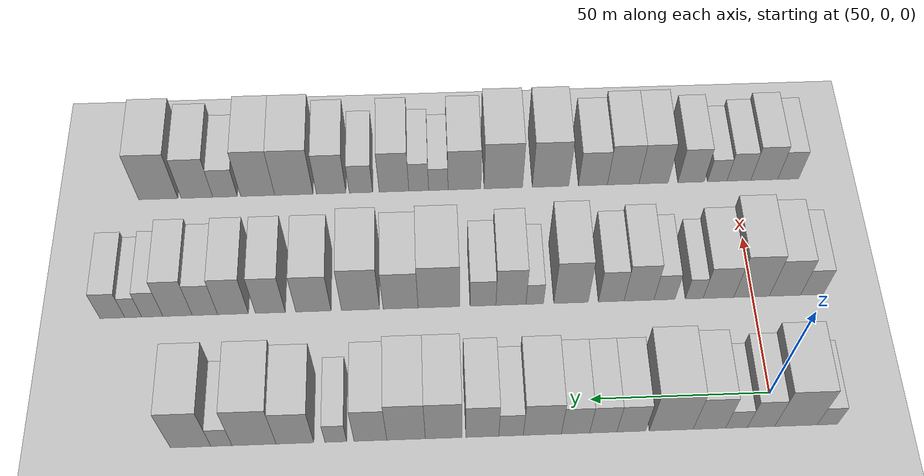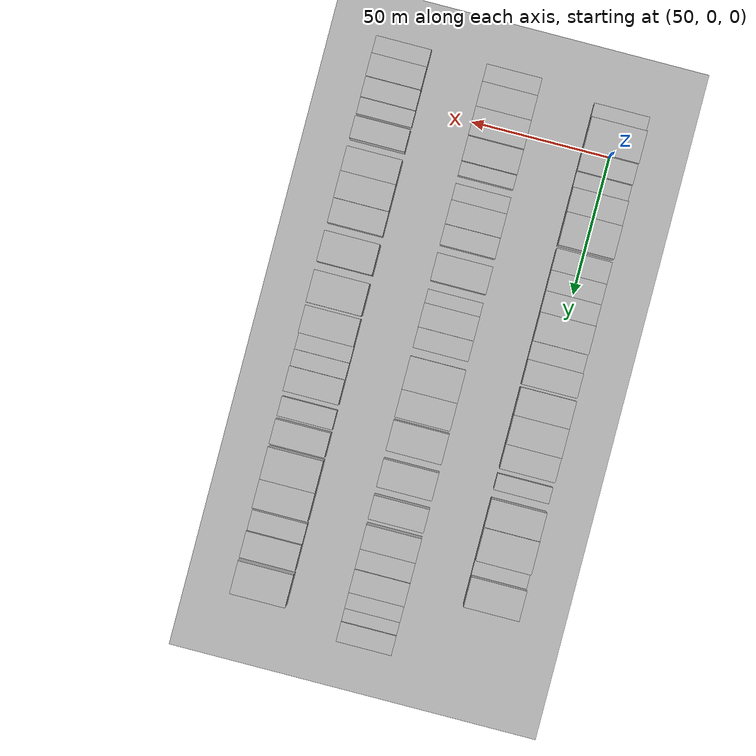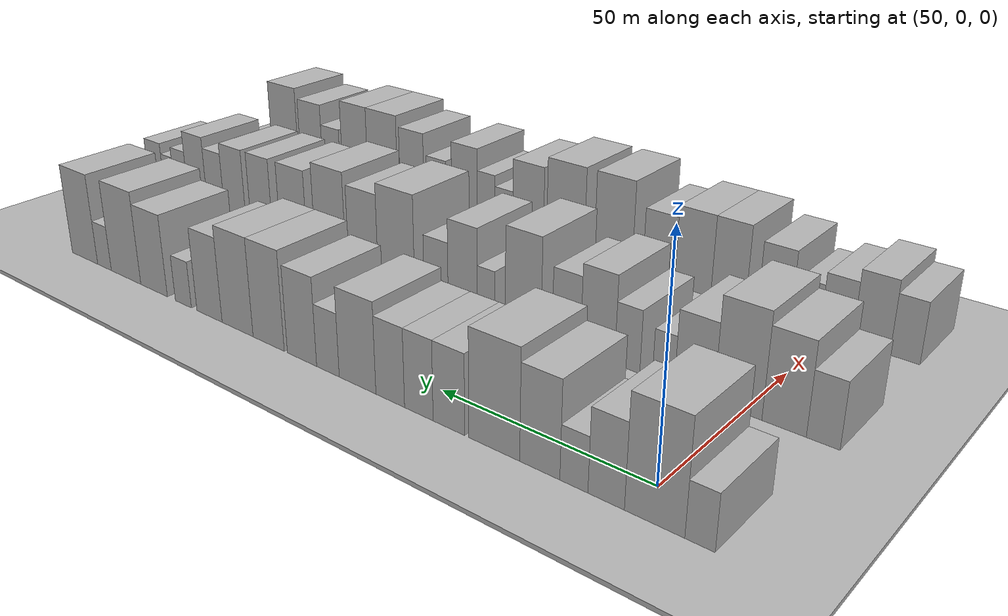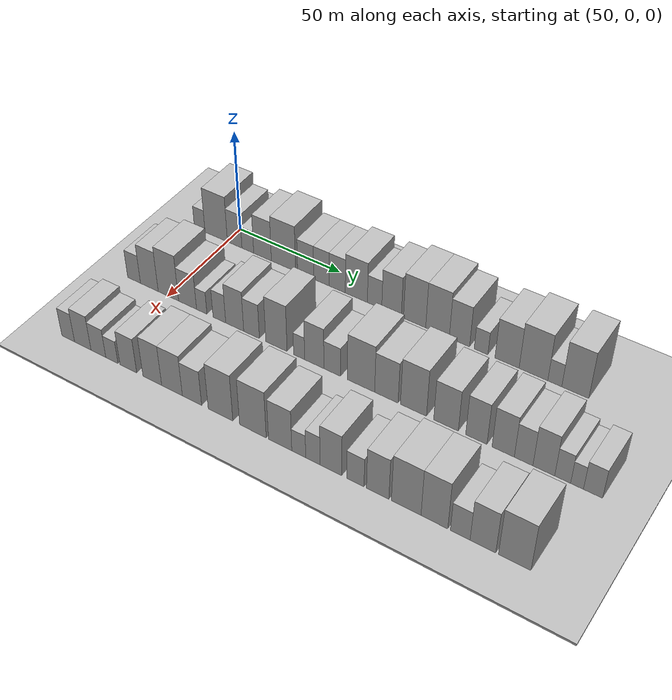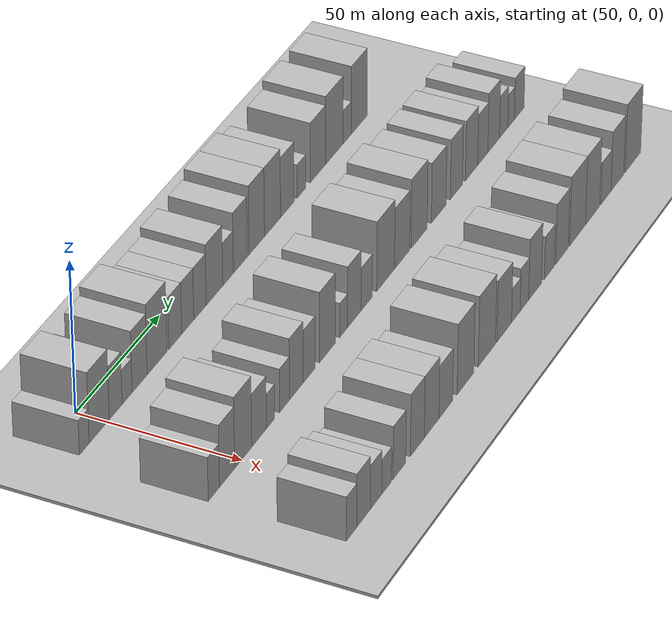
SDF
<sdf version="1.6">
 <world name="default">
  <include><name>ground_plane_1</name><uri>model://HANNAS_ground_plane</uri></include>
  <include>
   <name>ground_plane_2</name>
   <uri>model://HANNAS_ground_plane</uri>
   <pose>100 0 0  0 0 0</pose>
  </include>
  <model name="building_43">
   <static>1</static>
   <pose>50.0000 -14.0464 0 0.000000 0.000000 0.000000</pose>
   <link name="link">
    <pose>0 0 6.00 0 0 0</pose>
    <collision name="collision"><geometry><box><size>20.0000 5.6122 12.0000</size></box></geometry></collision>
    <visual name="visual">
     <cast_shadows>0</cast_shadows>
     <geometry><box><size>20.0000 5.6122 12.0000</size></box></geometry>
     <material>
      <script>
       <uri>model://HANNAS_wall/materials/scripts</uri>
       <uri>model://HANNAS_wall/materials/textures</uri>
       <name>vrc/HANNAS_wall</name>
      </script>
     </material>
    </visual>
   </link>
  </model>
  <model name="building_44">
   <static>1</static>
   <pose>50.0000 -5.3865 0 0.000000 0.000000 0.000000</pose>
   <link name="link">
    <pose>0 0 12.00 0 0 0</pose>
    <collision name="collision"><geometry><box><size>20.0000 11.7078 24.0000</size></box></geometry></collision>
    <visual name="visual">
     <cast_shadows>0</cast_shadows>
     <geometry><box><size>20.0000 11.7078 24.0000</size></box></geometry>
     <material>
      <script>
       <uri>model://HANNAS_wall/materials/scripts</uri>
       <uri>model://HANNAS_wall/materials/textures</uri>
       <name>vrc/HANNAS_wall</name>
      </script>
     </material>
    </visual>
   </link>
  </model>
  <model name="building_45">
   <static>1</static>
   <pose>50.0000 4.2146 0 0.000000 0.000000 0.000000</pose>
   <link name="link">
    <pose>0 0 9.00 0 0 0</pose>
    <collision name="collision"><geometry><box><size>20.0000 7.4943 18.0000</size></box></geometry></collision>
    <visual name="visual">
     <cast_shadows>0</cast_shadows>
     <geometry><box><size>20.0000 7.4943 18.0000</size></box></geometry>
     <material>
      <script>
       <uri>model://HANNAS_wall/materials/scripts</uri>
       <uri>model://HANNAS_wall/materials/textures</uri>
       <name>vrc/HANNAS_wall</name>
      </script>
     </material>
    </visual>
   </link>
  </model>
  <model name="building_46">
   <static>1</static>
   <pose>50.0000 10.9551 0 0.000000 0.000000 0.000000</pose>
   <link name="link">
    <pose>0 0 6.00 0 0 0</pose>
    <collision name="collision"><geometry><box><size>20.0000 5.9868 12.0000</size></box></geometry></collision>
    <visual name="visual">
     <cast_shadows>0</cast_shadows>
     <geometry><box><size>20.0000 5.9868 12.0000</size></box></geometry>
     <material>
      <script>
       <uri>model://HANNAS_wall/materials/scripts</uri>
       <uri>model://HANNAS_wall/materials/textures</uri>
       <name>vrc/HANNAS_wall</name>
      </script>
     </material>
    </visual>
   </link>
  </model>
  <model name="building_47">
   <static>1</static>
   <pose>50.0000 18.4192 0 0.000000 0.000000 0.000000</pose>
   <link name="link">
    <pose>0 0 10.50 0 0 0</pose>
    <collision name="collision"><geometry><box><size>20.0000 8.9415 21.0000</size></box></geometry></collision>
    <visual name="visual">
     <cast_shadows>0</cast_shadows>
     <geometry><box><size>20.0000 8.9415 21.0000</size></box></geometry>
     <material>
      <script>
       <uri>model://HANNAS_wall/materials/scripts</uri>
       <uri>model://HANNAS_wall/materials/textures</uri>
       <name>vrc/HANNAS_wall</name>
      </script>
     </material>
    </visual>
   </link>
  </model>
  <model name="building_48">
   <static>1</static>
   <pose>50.0000 28.8861 0 0.000000 0.000000 0.000000</pose>
   <link name="link">
    <pose>0 0 12.00 0 0 0</pose>
    <collision name="collision"><geometry><box><size>20.0000 11.9924 24.0000</size></box></geometry></collision>
    <visual name="visual">
     <cast_shadows>0</cast_shadows>
     <geometry><box><size>20.0000 11.9924 24.0000</size></box></geometry>
     <material>
      <script>
       <uri>model://HANNAS_wall/materials/scripts</uri>
       <uri>model://HANNAS_wall/materials/textures</uri>
       <name>vrc/HANNAS_wall</name>
      </script>
     </material>
    </visual>
   </link>
  </model>
  <model name="building_49">
   <static>1</static>
   <pose>50.0000 39.8262 0 0.000000 0.000000 0.000000</pose>
   <link name="link">
    <pose>0 0 9.00 0 0 0</pose>
    <collision name="collision"><geometry><box><size>20.0000 7.8877 18.0000</size></box></geometry></collision>
    <visual name="visual">
     <cast_shadows>0</cast_shadows>
     <geometry><box><size>20.0000 7.8877 18.0000</size></box></geometry>
     <material>
      <script>
       <uri>model://HANNAS_wall/materials/scripts</uri>
       <uri>model://HANNAS_wall/materials/textures</uri>
       <name>vrc/HANNAS_wall</name>
      </script>
     </material>
    </visual>
   </link>
  </model>
  <model name="building_50">
   <static>1</static>
   <pose>50.0000 47.4866 0 0.000000 0.000000 0.000000</pose>
   <link name="link">
    <pose>0 0 9.00 0 0 0</pose>
    <collision name="collision"><geometry><box><size>20.0000 7.4331 18.0000</size></box></geometry></collision>
    <visual name="visual">
     <cast_shadows>0</cast_shadows>
     <geometry><box><size>20.0000 7.4331 18.0000</size></box></geometry>
     <material>
      <script>
       <uri>model://HANNAS_wall/materials/scripts</uri>
       <uri>model://HANNAS_wall/materials/textures</uri>
       <name>vrc/HANNAS_wall</name>
      </script>
     </material>
    </visual>
   </link>
  </model>
  <model name="building_51">
   <static>1</static>
   <pose>50.0000 55.0827 0 0.000000 0.000000 0.000000</pose>
   <link name="link">
    <pose>0 0 9.00 0 0 0</pose>
    <collision name="collision"><geometry><box><size>20.0000 7.7591 18.0000</size></box></geometry></collision>
    <visual name="visual">
     <cast_shadows>0</cast_shadows>
     <geometry><box><size>20.0000 7.7591 18.0000</size></box></geometry>
     <material>
      <script>
       <uri>model://HANNAS_wall/materials/scripts</uri>
       <uri>model://HANNAS_wall/materials/textures</uri>
       <name>vrc/HANNAS_wall</name>
      </script>
     </material>
    </visual>
   </link>
  </model>
  <model name="building_52">
   <static>1</static>
   <pose>50.0000 64.1547 0 0.000000 0.000000 0.000000</pose>
   <link name="link">
    <pose>0 0 10.50 0 0 0</pose>
    <collision name="collision"><geometry><box><size>20.0000 10.3849 21.0000</size></box></geometry></collision>
    <visual name="visual">
     <cast_shadows>0</cast_shadows>
     <geometry><box><size>20.0000 10.3849 21.0000</size></box></geometry>
     <material>
      <script>
       <uri>model://HANNAS_wall/materials/scripts</uri>
       <uri>model://HANNAS_wall/materials/textures</uri>
       <name>vrc/HANNAS_wall</name>
      </script>
     </material>
    </visual>
   </link>
  </model>
  <model name="building_53">
   <static>1</static>
   <pose>50.0000 72.6864 0 0.000000 0.000000 0.000000</pose>
   <link name="link">
    <pose>0 0 7.50 0 0 0</pose>
    <collision name="collision"><geometry><box><size>20.0000 6.6784 15.0000</size></box></geometry></collision>
    <visual name="visual">
     <cast_shadows>0</cast_shadows>
     <geometry><box><size>20.0000 6.6784 15.0000</size></box></geometry>
     <material>
      <script>
       <uri>model://HANNAS_wall/materials/scripts</uri>
       <uri>model://HANNAS_wall/materials/textures</uri>
       <name>vrc/HANNAS_wall</name>
      </script>
     </material>
    </visual>
   </link>
  </model>
  <model name="building_54">
   <static>1</static>
   <pose>50.0000 80.5104 0 0.000000 0.000000 0.000000</pose>
   <link name="link">
    <pose>0 0 10.50 0 0 0</pose>
    <collision name="collision"><geometry><box><size>20.0000 8.9695 21.0000</size></box></geometry></collision>
    <visual name="visual">
     <cast_shadows>0</cast_shadows>
     <geometry><box><size>20.0000 8.9695 21.0000</size></box></geometry>
     <material>
      <script>
       <uri>model://HANNAS_wall/materials/scripts</uri>
       <uri>model://HANNAS_wall/materials/textures</uri>
       <name>vrc/HANNAS_wall</name>
      </script>
     </material>
    </visual>
   </link>
  </model>
  <model name="building_55">
   <static>1</static>
   <pose>50.0000 91.0165 0 0.000000 0.000000 0.000000</pose>
   <link name="link">
    <pose>0 0 12.00 0 0 0</pose>
    <collision name="collision"><geometry><box><size>20.0000 10.0427 24.0000</size></box></geometry></collision>
    <visual name="visual">
     <cast_shadows>0</cast_shadows>
     <geometry><box><size>20.0000 10.0427 24.0000</size></box></geometry>
     <material>
      <script>
       <uri>model://HANNAS_wall/materials/scripts</uri>
       <uri>model://HANNAS_wall/materials/textures</uri>
       <name>vrc/HANNAS_wall</name>
      </script>
     </material>
    </visual>
   </link>
  </model>
  <model name="building_56">
   <static>1</static>
   <pose>50.0000 101.2746 0 0.000000 0.000000 0.000000</pose>
   <link name="link">
    <pose>0 0 12.00 0 0 0</pose>
    <collision name="collision"><geometry><box><size>20.0000 10.4735 24.0000</size></box></geometry></collision>
    <visual name="visual">
     <cast_shadows>0</cast_shadows>
     <geometry><box><size>20.0000 10.4735 24.0000</size></box></geometry>
     <material>
      <script>
       <uri>model://HANNAS_wall/materials/scripts</uri>
       <uri>model://HANNAS_wall/materials/textures</uri>
       <name>vrc/HANNAS_wall</name>
      </script>
     </material>
    </visual>
   </link>
  </model>
  <model name="building_57">
   <static>1</static>
   <pose>50.0000 110.9593 0 0.000000 0.000000 0.000000</pose>
   <link name="link">
    <pose>0 0 10.50 0 0 0</pose>
    <collision name="collision"><geometry><box><size>20.0000 8.8959 21.0000</size></box></geometry></collision>
    <visual name="visual">
     <cast_shadows>0</cast_shadows>
     <geometry><box><size>20.0000 8.8959 21.0000</size></box></geometry>
     <material>
      <script>
       <uri>model://HANNAS_wall/materials/scripts</uri>
       <uri>model://HANNAS_wall/materials/textures</uri>
       <name>vrc/HANNAS_wall</name>
      </script>
     </material>
    </visual>
   </link>
  </model>
  <model name="building_58">
   <static>1</static>
   <pose>50.0000 120.3585 0 0.000000 0.000000 0.000000</pose>
   <link name="link">
    <pose>0 0 6.00 0 0 0</pose>
    <collision name="collision"><geometry><box><size>20.0000 5.9026 12.0000</size></box></geometry></collision>
    <visual name="visual">
     <cast_shadows>0</cast_shadows>
     <geometry><box><size>20.0000 5.9026 12.0000</size></box></geometry>
     <material>
      <script>
       <uri>model://HANNAS_wall/materials/scripts</uri>
       <uri>model://HANNAS_wall/materials/textures</uri>
       <name>vrc/HANNAS_wall</name>
      </script>
     </material>
    </visual>
   </link>
  </model>
  <model name="building_59">
   <static>1</static>
   <pose>50.0000 131.4336 0 0.000000 0.000000 0.000000</pose>
   <link name="link">
    <pose>0 0 10.50 0 0 0</pose>
    <collision name="collision"><geometry><box><size>20.0000 10.2477 21.0000</size></box></geometry></collision>
    <visual name="visual">
     <cast_shadows>0</cast_shadows>
     <geometry><box><size>20.0000 10.2477 21.0000</size></box></geometry>
     <material>
      <script>
       <uri>model://HANNAS_wall/materials/scripts</uri>
       <uri>model://HANNAS_wall/materials/textures</uri>
       <name>vrc/HANNAS_wall</name>
      </script>
     </material>
    </visual>
   </link>
  </model>
  <model name="building_60">
   <static>1</static>
   <pose>50.0000 142.5209 0 0.000000 0.000000 0.000000</pose>
   <link name="link">
    <pose>0 0 12.00 0 0 0</pose>
    <collision name="collision"><geometry><box><size>20.0000 11.9268 24.0000</size></box></geometry></collision>
    <visual name="visual">
     <cast_shadows>0</cast_shadows>
     <geometry><box><size>20.0000 11.9268 24.0000</size></box></geometry>
     <material>
      <script>
       <uri>model://HANNAS_wall/materials/scripts</uri>
       <uri>model://HANNAS_wall/materials/textures</uri>
       <name>vrc/HANNAS_wall</name>
      </script>
     </material>
    </visual>
   </link>
  </model>
  <model name="building_61">
   <static>1</static>
   <pose>50.0000 151.3487 0 0.000000 0.000000 0.000000</pose>
   <link name="link">
    <pose>0 0 6.00 0 0 0</pose>
    <collision name="collision"><geometry><box><size>20.0000 5.7289 12.0000</size></box></geometry></collision>
    <visual name="visual">
     <cast_shadows>0</cast_shadows>
     <geometry><box><size>20.0000 5.7289 12.0000</size></box></geometry>
     <material>
      <script>
       <uri>model://HANNAS_wall/materials/scripts</uri>
       <uri>model://HANNAS_wall/materials/textures</uri>
       <name>vrc/HANNAS_wall</name>
      </script>
     </material>
    </visual>
   </link>
  </model>
  <model name="building_62">
   <static>1</static>
   <pose>50.0000 159.6799 0 0.000000 0.000000 0.000000</pose>
   <link name="link">
    <pose>0 0 12.00 0 0 0</pose>
    <collision name="collision"><geometry><box><size>20.0000 10.9334 24.0000</size></box></geometry></collision>
    <visual name="visual">
     <cast_shadows>0</cast_shadows>
     <geometry><box><size>20.0000 10.9334 24.0000</size></box></geometry>
     <material>
      <script>
       <uri>model://HANNAS_wall/materials/scripts</uri>
       <uri>model://HANNAS_wall/materials/textures</uri>
       <name>vrc/HANNAS_wall</name>
      </script>
     </material>
    </visual>
   </link>
  </model>
  <model name="building_121">
   <static>1</static>
   <pose>90.0000 -17.0035 0 0.000000 0.000000 0.000000</pose>
   <link name="link">
    <pose>0 0 7.50 0 0 0</pose>
    <collision name="collision"><geometry><box><size>20.0000 6.6418 15.0000</size></box></geometry></collision>
    <visual name="visual">
     <cast_shadows>0</cast_shadows>
     <geometry><box><size>20.0000 6.6418 15.0000</size></box></geometry>
     <material>
      <script>
       <uri>model://HANNAS_wall/materials/scripts</uri>
       <uri>model://HANNAS_wall/materials/textures</uri>
       <name>vrc/HANNAS_wall</name>
      </script>
     </material>
    </visual>
   </link>
  </model>
  <model name="building_122">
   <static>1</static>
   <pose>90.0000 -9.1306 0 0.000000 0.000000 0.000000</pose>
   <link name="link">
    <pose>0 0 10.50 0 0 0</pose>
    <collision name="collision"><geometry><box><size>20.0000 9.1041 21.0000</size></box></geometry></collision>
    <visual name="visual">
     <cast_shadows>0</cast_shadows>
     <geometry><box><size>20.0000 9.1041 21.0000</size></box></geometry>
     <material>
      <script>
       <uri>model://HANNAS_wall/materials/scripts</uri>
       <uri>model://HANNAS_wall/materials/textures</uri>
       <name>vrc/HANNAS_wall</name>
      </script>
     </material>
    </visual>
   </link>
  </model>
  <model name="building_123">
   <static>1</static>
   <pose>90.0000 0.5972 0 0.000000 0.000000 0.000000</pose>
   <link name="link">
    <pose>0 0 12.00 0 0 0</pose>
    <collision name="collision"><geometry><box><size>20.0000 10.3515 24.0000</size></box></geometry></collision>
    <visual name="visual">
     <cast_shadows>0</cast_shadows>
     <geometry><box><size>20.0000 10.3515 24.0000</size></box></geometry>
     <material>
      <script>
       <uri>model://HANNAS_wall/materials/scripts</uri>
       <uri>model://HANNAS_wall/materials/textures</uri>
       <name>vrc/HANNAS_wall</name>
      </script>
     </material>
    </visual>
   </link>
  </model>
  <model name="building_124">
   <static>1</static>
   <pose>90.0000 10.2399 0 0.000000 0.000000 0.000000</pose>
   <link name="link">
    <pose>0 0 9.00 0 0 0</pose>
    <collision name="collision"><geometry><box><size>20.0000 8.9339 18.0000</size></box></geometry></collision>
    <visual name="visual">
     <cast_shadows>0</cast_shadows>
     <geometry><box><size>20.0000 8.9339 18.0000</size></box></geometry>
     <material>
      <script>
       <uri>model://HANNAS_wall/materials/scripts</uri>
       <uri>model://HANNAS_wall/materials/textures</uri>
       <name>vrc/HANNAS_wall</name>
      </script>
     </material>
    </visual>
   </link>
  </model>
  <model name="building_125">
   <static>1</static>
   <pose>90.0000 17.2752 0 0.000000 0.000000 0.000000</pose>
   <link name="link">
    <pose>0 0 6.00 0 0 0</pose>
    <collision name="collision"><geometry><box><size>20.0000 5.1366 12.0000</size></box></geometry></collision>
    <visual name="visual">
     <cast_shadows>0</cast_shadows>
     <geometry><box><size>20.0000 5.1366 12.0000</size></box></geometry>
     <material>
      <script>
       <uri>model://HANNAS_wall/materials/scripts</uri>
       <uri>model://HANNAS_wall/materials/textures</uri>
       <name>vrc/HANNAS_wall</name>
      </script>
     </material>
    </visual>
   </link>
  </model>
  <model name="building_126">
   <static>1</static>
   <pose>90.0000 25.9150 0 0.000000 0.000000 0.000000</pose>
   <link name="link">
    <pose>0 0 7.50 0 0 0</pose>
    <collision name="collision"><geometry><box><size>20.0000 6.1430 15.0000</size></box></geometry></collision>
    <visual name="visual">
     <cast_shadows>0</cast_shadows>
     <geometry><box><size>20.0000 6.1430 15.0000</size></box></geometry>
     <material>
      <script>
       <uri>model://HANNAS_wall/materials/scripts</uri>
       <uri>model://HANNAS_wall/materials/textures</uri>
       <name>vrc/HANNAS_wall</name>
      </script>
     </material>
    </visual>
   </link>
  </model>
  <model name="building_127">
   <static>1</static>
   <pose>90.0000 33.3192 0 0.000000 0.000000 0.000000</pose>
   <link name="link">
    <pose>0 0 10.50 0 0 0</pose>
    <collision name="collision"><geometry><box><size>20.0000 8.6654 21.0000</size></box></geometry></collision>
    <visual name="visual">
     <cast_shadows>0</cast_shadows>
     <geometry><box><size>20.0000 8.6654 21.0000</size></box></geometry>
     <material>
      <script>
       <uri>model://HANNAS_wall/materials/scripts</uri>
       <uri>model://HANNAS_wall/materials/textures</uri>
       <name>vrc/HANNAS_wall</name>
      </script>
     </material>
    </visual>
   </link>
  </model>
  <model name="building_128">
   <static>1</static>
   <pose>90.0000 41.3755 0 0.000000 0.000000 0.000000</pose>
   <link name="link">
    <pose>0 0 9.00 0 0 0</pose>
    <collision name="collision"><geometry><box><size>20.0000 7.4471 18.0000</size></box></geometry></collision>
    <visual name="visual">
     <cast_shadows>0</cast_shadows>
     <geometry><box><size>20.0000 7.4471 18.0000</size></box></geometry>
     <material>
      <script>
       <uri>model://HANNAS_wall/materials/scripts</uri>
       <uri>model://HANNAS_wall/materials/textures</uri>
       <name>vrc/HANNAS_wall</name>
      </script>
     </material>
    </visual>
   </link>
  </model>
  <model name="building_129">
   <static>1</static>
   <pose>90.0000 53.0640 0 0.000000 0.000000 0.000000</pose>
   <link name="link">
    <pose>0 0 12.00 0 0 0</pose>
    <collision name="collision"><geometry><box><size>20.0000 9.9300 24.0000</size></box></geometry></collision>
    <visual name="visual">
     <cast_shadows>0</cast_shadows>
     <geometry><box><size>20.0000 9.9300 24.0000</size></box></geometry>
     <material>
      <script>
       <uri>model://HANNAS_wall/materials/scripts</uri>
       <uri>model://HANNAS_wall/materials/textures</uri>
       <name>vrc/HANNAS_wall</name>
      </script>
     </material>
    </visual>
   </link>
  </model>
  <model name="building_130">
   <static>1</static>
   <pose>90.0000 63.5595 0 0.000000 0.000000 0.000000</pose>
   <link name="link">
    <pose>0 0 6.00 0 0 0</pose>
    <collision name="collision"><geometry><box><size>20.0000 5.0610 12.0000</size></box></geometry></collision>
    <visual name="visual">
     <cast_shadows>0</cast_shadows>
     <geometry><box><size>20.0000 5.0610 12.0000</size></box></geometry>
     <material>
      <script>
       <uri>model://HANNAS_wall/materials/scripts</uri>
       <uri>model://HANNAS_wall/materials/textures</uri>
       <name>vrc/HANNAS_wall</name>
      </script>
     </material>
    </visual>
   </link>
  </model>
  <model name="building_131">
   <static>1</static>
   <pose>90.0000 70.4377 0 0.000000 0.000000 0.000000</pose>
   <link name="link">
    <pose>0 0 10.50 0 0 0</pose>
    <collision name="collision"><geometry><box><size>20.0000 8.6955 21.0000</size></box></geometry></collision>
    <visual name="visual">
     <cast_shadows>0</cast_shadows>
     <geometry><box><size>20.0000 8.6955 21.0000</size></box></geometry>
     <material>
      <script>
       <uri>model://HANNAS_wall/materials/scripts</uri>
       <uri>model://HANNAS_wall/materials/textures</uri>
       <name>vrc/HANNAS_wall</name>
      </script>
     </material>
    </visual>
   </link>
  </model>
  <model name="building_132">
   <static>1</static>
   <pose>90.0000 78.5128 0 0.000000 0.000000 0.000000</pose>
   <link name="link">
    <pose>0 0 7.50 0 0 0</pose>
    <collision name="collision"><geometry><box><size>20.0000 7.4546 15.0000</size></box></geometry></collision>
    <visual name="visual">
     <cast_shadows>0</cast_shadows>
     <geometry><box><size>20.0000 7.4546 15.0000</size></box></geometry>
     <material>
      <script>
       <uri>model://HANNAS_wall/materials/scripts</uri>
       <uri>model://HANNAS_wall/materials/textures</uri>
       <name>vrc/HANNAS_wall</name>
      </script>
     </material>
    </visual>
   </link>
  </model>
  <model name="building_133">
   <static>1</static>
   <pose>90.0000 91.2257 0 0.000000 0.000000 0.000000</pose>
   <link name="link">
    <pose>0 0 12.00 0 0 0</pose>
    <collision name="collision"><geometry><box><size>20.0000 11.9712 24.0000</size></box></geometry></collision>
    <visual name="visual">
     <cast_shadows>0</cast_shadows>
     <geometry><box><size>20.0000 11.9712 24.0000</size></box></geometry>
     <material>
      <script>
       <uri>model://HANNAS_wall/materials/scripts</uri>
       <uri>model://HANNAS_wall/materials/textures</uri>
       <name>vrc/HANNAS_wall</name>
      </script>
     </material>
    </visual>
   </link>
  </model>
  <model name="building_134">
   <static>1</static>
   <pose>90.0000 102.2499 0 0.000000 0.000000 0.000000</pose>
   <link name="link">
    <pose>0 0 10.50 0 0 0</pose>
    <collision name="collision"><geometry><box><size>20.0000 10.0771 21.0000</size></box></geometry></collision>
    <visual name="visual">
     <cast_shadows>0</cast_shadows>
     <geometry><box><size>20.0000 10.0771 21.0000</size></box></geometry>
     <material>
      <script>
       <uri>model://HANNAS_wall/materials/scripts</uri>
       <uri>model://HANNAS_wall/materials/textures</uri>
       <name>vrc/HANNAS_wall</name>
      </script>
     </material>
    </visual>
   </link>
  </model>
  <model name="building_135">
   <static>1</static>
   <pose>90.0000 113.7833 0 0.000000 0.000000 0.000000</pose>
   <link name="link">
    <pose>0 0 12.00 0 0 0</pose>
    <collision name="collision"><geometry><box><size>20.0000 10.9898 24.0000</size></box></geometry></collision>
    <visual name="visual">
     <cast_shadows>0</cast_shadows>
     <geometry><box><size>20.0000 10.9898 24.0000</size></box></geometry>
     <material>
      <script>
       <uri>model://HANNAS_wall/materials/scripts</uri>
       <uri>model://HANNAS_wall/materials/textures</uri>
       <name>vrc/HANNAS_wall</name>
      </script>
     </material>
    </visual>
   </link>
  </model>
  <model name="building_136">
   <static>1</static>
   <pose>90.0000 127.3532 0 0.000000 0.000000 0.000000</pose>
   <link name="link">
    <pose>0 0 10.50 0 0 0</pose>
    <collision name="collision"><geometry><box><size>20.0000 10.1499 21.0000</size></box></geometry></collision>
    <visual name="visual">
     <cast_shadows>0</cast_shadows>
     <geometry><box><size>20.0000 10.1499 21.0000</size></box></geometry>
     <material>
      <script>
       <uri>model://HANNAS_wall/materials/scripts</uri>
       <uri>model://HANNAS_wall/materials/textures</uri>
       <name>vrc/HANNAS_wall</name>
      </script>
     </material>
    </visual>
   </link>
  </model>
  <model name="building_137">
   <static>1</static>
   <pose>90.0000 139.7198 0 0.000000 0.000000 0.000000</pose>
   <link name="link">
    <pose>0 0 10.50 0 0 0</pose>
    <collision name="collision"><geometry><box><size>20.0000 8.5832 21.0000</size></box></geometry></collision>
    <visual name="visual">
     <cast_shadows>0</cast_shadows>
     <geometry><box><size>20.0000 8.5832 21.0000</size></box></geometry>
     <material>
      <script>
       <uri>model://HANNAS_wall/materials/scripts</uri>
       <uri>model://HANNAS_wall/materials/textures</uri>
       <name>vrc/HANNAS_wall</name>
      </script>
     </material>
    </visual>
   </link>
  </model>
  <model name="building_138">
   <static>1</static>
   <pose>90.0000 150.4252 0 0.000000 0.000000 0.000000</pose>
   <link name="link">
    <pose>0 0 10.50 0 0 0</pose>
    <collision name="collision"><geometry><box><size>20.0000 8.8276 21.0000</size></box></geometry></collision>
    <visual name="visual">
     <cast_shadows>0</cast_shadows>
     <geometry><box><size>20.0000 8.8276 21.0000</size></box></geometry>
     <material>
      <script>
       <uri>model://HANNAS_wall/materials/scripts</uri>
       <uri>model://HANNAS_wall/materials/textures</uri>
       <name>vrc/HANNAS_wall</name>
      </script>
     </material>
    </visual>
   </link>
  </model>
  <model name="building_139">
   <static>1</static>
   <pose>90.0000 158.4719 0 0.000000 0.000000 0.000000</pose>
   <link name="link">
    <pose>0 0 9.00 0 0 0</pose>
    <collision name="collision"><geometry><box><size>20.0000 7.2659 18.0000</size></box></geometry></collision>
    <visual name="visual">
     <cast_shadows>0</cast_shadows>
     <geometry><box><size>20.0000 7.2659 18.0000</size></box></geometry>
     <material>
      <script>
       <uri>model://HANNAS_wall/materials/scripts</uri>
       <uri>model://HANNAS_wall/materials/textures</uri>
       <name>vrc/HANNAS_wall</name>
      </script>
     </material>
    </visual>
   </link>
  </model>
  <model name="building_140">
   <static>1</static>
   <pose>90.0000 166.3060 0 0.000000 0.000000 0.000000</pose>
   <link name="link">
    <pose>0 0 10.50 0 0 0</pose>
    <collision name="collision"><geometry><box><size>20.0000 8.4023 21.0000</size></box></geometry></collision>
    <visual name="visual">
     <cast_shadows>0</cast_shadows>
     <geometry><box><size>20.0000 8.4023 21.0000</size></box></geometry>
     <material>
      <script>
       <uri>model://HANNAS_wall/materials/scripts</uri>
       <uri>model://HANNAS_wall/materials/textures</uri>
       <name>vrc/HANNAS_wall</name>
      </script>
     </material>
    </visual>
   </link>
  </model>
  <model name="building_141">
   <static>1</static>
   <pose>90.0000 173.5317 0 0.000000 0.000000 0.000000</pose>
   <link name="link">
    <pose>0 0 7.50 0 0 0</pose>
    <collision name="collision"><geometry><box><size>20.0000 6.0491 15.0000</size></box></geometry></collision>
    <visual name="visual">
     <cast_shadows>0</cast_shadows>
     <geometry><box><size>20.0000 6.0491 15.0000</size></box></geometry>
     <material>
      <script>
       <uri>model://HANNAS_wall/materials/scripts</uri>
       <uri>model://HANNAS_wall/materials/textures</uri>
       <name>vrc/HANNAS_wall</name>
      </script>
     </material>
    </visual>
   </link>
  </model>
  <model name="building_142">
   <static>1</static>
   <pose>90.0000 178.9747 0 0.000000 0.000000 0.000000</pose>
   <link name="link">
    <pose>0 0 6.00 0 0 0</pose>
    <collision name="collision"><geometry><box><size>20.0000 4.8369 12.0000</size></box></geometry></collision>
    <visual name="visual">
     <cast_shadows>0</cast_shadows>
     <geometry><box><size>20.0000 4.8369 12.0000</size></box></geometry>
     <material>
      <script>
       <uri>model://HANNAS_wall/materials/scripts</uri>
       <uri>model://HANNAS_wall/materials/textures</uri>
       <name>vrc/HANNAS_wall</name>
      </script>
     </material>
    </visual>
   </link>
  </model>
  <model name="building_143">
   <static>1</static>
   <pose>90.0000 184.9591 0 0.000000 0.000000 0.000000</pose>
   <link name="link">
    <pose>0 0 7.50 0 0 0</pose>
    <collision name="collision"><geometry><box><size>20.0000 7.1319 15.0000</size></box></geometry></collision>
    <visual name="visual">
     <cast_shadows>0</cast_shadows>
     <geometry><box><size>20.0000 7.1319 15.0000</size></box></geometry>
     <material>
      <script>
       <uri>model://HANNAS_wall/materials/scripts</uri>
       <uri>model://HANNAS_wall/materials/textures</uri>
       <name>vrc/HANNAS_wall</name>
      </script>
     </material>
    </visual>
   </link>
  </model>
  <model name="building_214">
   <static>1</static>
   <pose>130.0000 -16.9266 0 0.000000 0.000000 0.000000</pose>
   <link name="link">
    <pose>0 0 7.50 0 0 0</pose>
    <collision name="collision"><geometry><box><size>20.0000 6.4426 15.0000</size></box></geometry></collision>
    <visual name="visual">
     <cast_shadows>0</cast_shadows>
     <geometry><box><size>20.0000 6.4426 15.0000</size></box></geometry>
     <material>
      <script>
       <uri>model://HANNAS_wall/materials/scripts</uri>
       <uri>model://HANNAS_wall/materials/textures</uri>
       <name>vrc/HANNAS_wall</name>
      </script>
     </material>
    </visual>
   </link>
  </model>
  <model name="building_215">
   <static>1</static>
   <pose>130.0000 -9.5635 0 0.000000 0.000000 0.000000</pose>
   <link name="link">
    <pose>0 0 9.00 0 0 0</pose>
    <collision name="collision"><geometry><box><size>20.0000 8.2837 18.0000</size></box></geometry></collision>
    <visual name="visual">
     <cast_shadows>0</cast_shadows>
     <geometry><box><size>20.0000 8.2837 18.0000</size></box></geometry>
     <material>
      <script>
       <uri>model://HANNAS_wall/materials/scripts</uri>
       <uri>model://HANNAS_wall/materials/textures</uri>
       <name>vrc/HANNAS_wall</name>
      </script>
     </material>
    </visual>
   </link>
  </model>
  <model name="building_216">
   <static>1</static>
   <pose>130.0000 -1.7477 0 0.000000 0.000000 0.000000</pose>
   <link name="link">
    <pose>0 0 7.50 0 0 0</pose>
    <collision name="collision"><geometry><box><size>20.0000 7.3478 15.0000</size></box></geometry></collision>
    <visual name="visual">
     <cast_shadows>0</cast_shadows>
     <geometry><box><size>20.0000 7.3478 15.0000</size></box></geometry>
     <material>
      <script>
       <uri>model://HANNAS_wall/materials/scripts</uri>
       <uri>model://HANNAS_wall/materials/textures</uri>
       <name>vrc/HANNAS_wall</name>
      </script>
     </material>
    </visual>
   </link>
  </model>
  <model name="building_217">
   <static>1</static>
   <pose>130.0000 4.9186 0 0.000000 0.000000 0.000000</pose>
   <link name="link">
    <pose>0 0 6.00 0 0 0</pose>
    <collision name="collision"><geometry><box><size>20.0000 5.9849 12.0000</size></box></geometry></collision>
    <visual name="visual">
     <cast_shadows>0</cast_shadows>
     <geometry><box><size>20.0000 5.9849 12.0000</size></box></geometry>
     <material>
      <script>
       <uri>model://HANNAS_wall/materials/scripts</uri>
       <uri>model://HANNAS_wall/materials/textures</uri>
       <name>vrc/HANNAS_wall</name>
      </script>
     </material>
    </visual>
   </link>
  </model>
  <model name="building_218">
   <static>1</static>
   <pose>130.0000 12.9563 0 0.000000 0.000000 0.000000</pose>
   <link name="link">
    <pose>0 0 9.00 0 0 0</pose>
    <collision name="collision"><geometry><box><size>20.0000 8.0906 18.0000</size></box></geometry></collision>
    <visual name="visual">
     <cast_shadows>0</cast_shadows>
     <geometry><box><size>20.0000 8.0906 18.0000</size></box></geometry>
     <material>
      <script>
       <uri>model://HANNAS_wall/materials/scripts</uri>
       <uri>model://HANNAS_wall/materials/textures</uri>
       <name>vrc/HANNAS_wall</name>
      </script>
     </material>
    </visual>
   </link>
  </model>
  <model name="building_219">
   <static>1</static>
   <pose>130.0000 24.4604 0 0.000000 0.000000 0.000000</pose>
   <link name="link">
    <pose>0 0 10.50 0 0 0</pose>
    <collision name="collision"><geometry><box><size>20.0000 8.9175 21.0000</size></box></geometry></collision>
    <visual name="visual">
     <cast_shadows>0</cast_shadows>
     <geometry><box><size>20.0000 8.9175 21.0000</size></box></geometry>
     <material>
      <script>
       <uri>model://HANNAS_wall/materials/scripts</uri>
       <uri>model://HANNAS_wall/materials/textures</uri>
       <name>vrc/HANNAS_wall</name>
      </script>
     </material>
    </visual>
   </link>
  </model>
  <model name="building_220">
   <static>1</static>
   <pose>130.0000 33.7636 0 0.000000 0.000000 0.000000</pose>
   <link name="link">
    <pose>0 0 10.50 0 0 0</pose>
    <collision name="collision"><geometry><box><size>20.0000 9.6889 21.0000</size></box></geometry></collision>
    <visual name="visual">
     <cast_shadows>0</cast_shadows>
     <geometry><box><size>20.0000 9.6889 21.0000</size></box></geometry>
     <material>
      <script>
       <uri>model://HANNAS_wall/materials/scripts</uri>
       <uri>model://HANNAS_wall/materials/textures</uri>
       <name>vrc/HANNAS_wall</name>
      </script>
     </material>
    </visual>
   </link>
  </model>
  <model name="building_221">
   <static>1</static>
   <pose>130.0000 43.0476 0 0.000000 0.000000 0.000000</pose>
   <link name="link">
    <pose>0 0 9.00 0 0 0</pose>
    <collision name="collision"><geometry><box><size>20.0000 8.8790 18.0000</size></box></geometry></collision>
    <visual name="visual">
     <cast_shadows>0</cast_shadows>
     <geometry><box><size>20.0000 8.8790 18.0000</size></box></geometry>
     <material>
      <script>
       <uri>model://HANNAS_wall/materials/scripts</uri>
       <uri>model://HANNAS_wall/materials/textures</uri>
       <name>vrc/HANNAS_wall</name>
      </script>
     </material>
    </visual>
   </link>
  </model>
  <model name="building_222">
   <static>1</static>
   <pose>130.0000 56.0503 0 0.000000 0.000000 0.000000</pose>
   <link name="link">
    <pose>0 0 12.00 0 0 0</pose>
    <collision name="collision"><geometry><box><size>20.0000 11.1264 24.0000</size></box></geometry></collision>
    <visual name="visual">
     <cast_shadows>0</cast_shadows>
     <geometry><box><size>20.0000 11.1264 24.0000</size></box></geometry>
     <material>
      <script>
       <uri>model://HANNAS_wall/materials/scripts</uri>
       <uri>model://HANNAS_wall/materials/textures</uri>
       <name>vrc/HANNAS_wall</name>
      </script>
     </material>
    </visual>
   </link>
  </model>
  <model name="building_223">
   <static>1</static>
   <pose>130.0000 70.4682 0 0.000000 0.000000 0.000000</pose>
   <link name="link">
    <pose>0 0 12.00 0 0 0</pose>
    <collision name="collision"><geometry><box><size>20.0000 11.7094 24.0000</size></box></geometry></collision>
    <visual name="visual">
     <cast_shadows>0</cast_shadows>
     <geometry><box><size>20.0000 11.7094 24.0000</size></box></geometry>
     <material>
      <script>
       <uri>model://HANNAS_wall/materials/scripts</uri>
       <uri>model://HANNAS_wall/materials/textures</uri>
       <name>vrc/HANNAS_wall</name>
      </script>
     </material>
    </visual>
   </link>
  </model>
  <model name="building_224">
   <static>1</static>
   <pose>130.0000 82.3273 0 0.000000 0.000000 0.000000</pose>
   <link name="link">
    <pose>0 0 10.50 0 0 0</pose>
    <collision name="collision"><geometry><box><size>20.0000 10.0088 21.0000</size></box></geometry></collision>
    <visual name="visual">
     <cast_shadows>0</cast_shadows>
     <geometry><box><size>20.0000 10.0088 21.0000</size></box></geometry>
     <material>
      <script>
       <uri>model://HANNAS_wall/materials/scripts</uri>
       <uri>model://HANNAS_wall/materials/textures</uri>
       <name>vrc/HANNAS_wall</name>
      </script>
     </material>
    </visual>
   </link>
  </model>
  <model name="building_225">
   <static>1</static>
   <pose>130.0000 90.2895 0 0.000000 0.000000 0.000000</pose>
   <link name="link">
    <pose>0 0 6.00 0 0 0</pose>
    <collision name="collision"><geometry><box><size>20.0000 5.9156 12.0000</size></box></geometry></collision>
    <visual name="visual">
     <cast_shadows>0</cast_shadows>
     <geometry><box><size>20.0000 5.9156 12.0000</size></box></geometry>
     <material>
      <script>
       <uri>model://HANNAS_wall/materials/scripts</uri>
       <uri>model://HANNAS_wall/materials/textures</uri>
       <name>vrc/HANNAS_wall</name>
      </script>
     </material>
    </visual>
   </link>
  </model>
  <model name="building_226">
   <static>1</static>
   <pose>130.0000 96.2562 0 0.000000 0.000000 0.000000</pose>
   <link name="link">
    <pose>0 0 7.50 0 0 0</pose>
    <collision name="collision"><geometry><box><size>20.0000 6.0177 15.0000</size></box></geometry></collision>
    <visual name="visual">
     <cast_shadows>0</cast_shadows>
     <geometry><box><size>20.0000 6.0177 15.0000</size></box></geometry>
     <material>
      <script>
       <uri>model://HANNAS_wall/materials/scripts</uri>
       <uri>model://HANNAS_wall/materials/textures</uri>
       <name>vrc/HANNAS_wall</name>
      </script>
     </material>
    </visual>
   </link>
  </model>
  <model name="building_227">
   <static>1</static>
   <pose>130.0000 103.7789 0 0.000000 0.000000 0.000000</pose>
   <link name="link">
    <pose>0 0 10.50 0 0 0</pose>
    <collision name="collision"><geometry><box><size>20.0000 9.0277 21.0000</size></box></geometry></collision>
    <visual name="visual">
     <cast_shadows>0</cast_shadows>
     <geometry><box><size>20.0000 9.0277 21.0000</size></box></geometry>
     <material>
      <script>
       <uri>model://HANNAS_wall/materials/scripts</uri>
       <uri>model://HANNAS_wall/materials/textures</uri>
       <name>vrc/HANNAS_wall</name>
      </script>
     </material>
    </visual>
   </link>
  </model>
  <model name="building_228">
   <static>1</static>
   <pose>130.0000 113.8417 0 0.000000 0.000000 0.000000</pose>
   <link name="link">
    <pose>0 0 7.50 0 0 0</pose>
    <collision name="collision"><geometry><box><size>20.0000 7.0979 15.0000</size></box></geometry></collision>
    <visual name="visual">
     <cast_shadows>0</cast_shadows>
     <geometry><box><size>20.0000 7.0979 15.0000</size></box></geometry>
     <material>
      <script>
       <uri>model://HANNAS_wall/materials/scripts</uri>
       <uri>model://HANNAS_wall/materials/textures</uri>
       <name>vrc/HANNAS_wall</name>
      </script>
     </material>
    </visual>
   </link>
  </model>
  <model name="building_229">
   <static>1</static>
   <pose>130.0000 122.8872 0 0.000000 0.000000 0.000000</pose>
   <link name="link">
    <pose>0 0 10.50 0 0 0</pose>
    <collision name="collision"><geometry><box><size>20.0000 8.9931 21.0000</size></box></geometry></collision>
    <visual name="visual">
     <cast_shadows>0</cast_shadows>
     <geometry><box><size>20.0000 8.9931 21.0000</size></box></geometry>
     <material>
      <script>
       <uri>model://HANNAS_wall/materials/scripts</uri>
       <uri>model://HANNAS_wall/materials/textures</uri>
       <name>vrc/HANNAS_wall</name>
      </script>
     </material>
    </visual>
   </link>
  </model>
  <model name="building_230">
   <static>1</static>
   <pose>130.0000 134.2099 0 0.000000 0.000000 0.000000</pose>
   <link name="link">
    <pose>0 0 12.00 0 0 0</pose>
    <collision name="collision"><geometry><box><size>20.0000 11.6524 24.0000</size></box></geometry></collision>
    <visual name="visual">
     <cast_shadows>0</cast_shadows>
     <geometry><box><size>20.0000 11.6524 24.0000</size></box></geometry>
     <material>
      <script>
       <uri>model://HANNAS_wall/materials/scripts</uri>
       <uri>model://HANNAS_wall/materials/textures</uri>
       <name>vrc/HANNAS_wall</name>
      </script>
     </material>
    </visual>
   </link>
  </model>
  <model name="building_231">
   <static>1</static>
   <pose>130.0000 145.1945 0 0.000000 0.000000 0.000000</pose>
   <link name="link">
    <pose>0 0 12.00 0 0 0</pose>
    <collision name="collision"><geometry><box><size>20.0000 10.3168 24.0000</size></box></geometry></collision>
    <visual name="visual">
     <cast_shadows>0</cast_shadows>
     <geometry><box><size>20.0000 10.3168 24.0000</size></box></geometry>
     <material>
      <script>
       <uri>model://HANNAS_wall/materials/scripts</uri>
       <uri>model://HANNAS_wall/materials/textures</uri>
       <name>vrc/HANNAS_wall</name>
      </script>
     </material>
    </visual>
   </link>
  </model>
  <model name="building_232">
   <static>1</static>
   <pose>130.0000 155.0768 0 0.000000 0.000000 0.000000</pose>
   <link name="link">
    <pose>0 0 7.50 0 0 0</pose>
    <collision name="collision"><geometry><box><size>20.0000 7.4480 15.0000</size></box></geometry></collision>
    <visual name="visual">
     <cast_shadows>0</cast_shadows>
     <geometry><box><size>20.0000 7.4480 15.0000</size></box></geometry>
     <material>
      <script>
       <uri>model://HANNAS_wall/materials/scripts</uri>
       <uri>model://HANNAS_wall/materials/textures</uri>
       <name>vrc/HANNAS_wall</name>
      </script>
     </material>
    </visual>
   </link>
  </model>
  <model name="building_233">
   <static>1</static>
   <pose>130.0000 163.5789 0 0.000000 0.000000 0.000000</pose>
   <link name="link">
    <pose>0 0 10.50 0 0 0</pose>
    <collision name="collision"><geometry><box><size>20.0000 9.5562 21.0000</size></box></geometry></collision>
    <visual name="visual">
     <cast_shadows>0</cast_shadows>
     <geometry><box><size>20.0000 9.5562 21.0000</size></box></geometry>
     <material>
      <script>
       <uri>model://HANNAS_wall/materials/scripts</uri>
       <uri>model://HANNAS_wall/materials/textures</uri>
       <name>vrc/HANNAS_wall</name>
      </script>
     </material>
    </visual>
   </link>
  </model>
  <model name="building_234">
   <static>1</static>
   <pose>130.0000 175.2818 0 0.000000 0.000000 0.000000</pose>
   <link name="link">
    <pose>0 0 12.00 0 0 0</pose>
    <collision name="collision"><geometry><box><size>20.0000 11.8495 24.0000</size></box></geometry></collision>
    <visual name="visual">
     <cast_shadows>0</cast_shadows>
     <geometry><box><size>20.0000 11.8495 24.0000</size></box></geometry>
     <material>
      <script>
       <uri>model://HANNAS_wall/materials/scripts</uri>
       <uri>model://HANNAS_wall/materials/textures</uri>
       <name>vrc/HANNAS_wall</name>
      </script>
     </material>
    </visual>
   </link>
  </model>
 </world>
</sdf>
